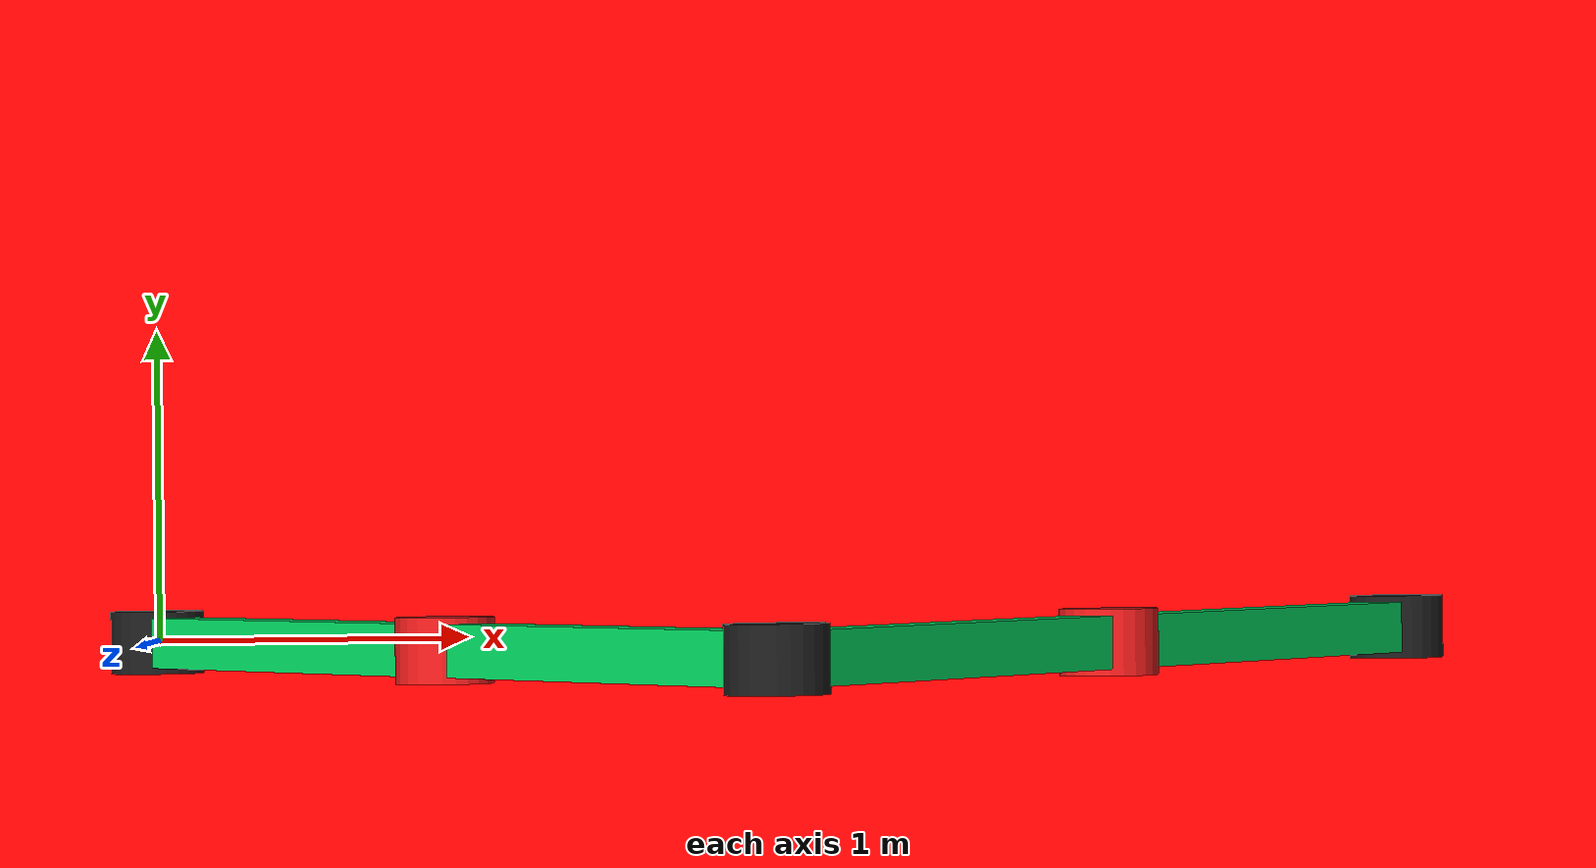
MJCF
<mujoco>
    <compiler angle="degree" />
    <option timestep="0.01" />

    <actuator>
        <motor joint="left_joint" ctrlrange="-10000 10000" ctrllimited="true" />
        <motor joint="right_joint" ctrlrange="-10000 10000" ctrllimited="true" />
    </actuator>

    <worldbody>
        <light diffuse=".5 .5 .5" pos="0 0 3" dir="0 0 -1" />
        <geom name="ground" type="plane" pos="0 0 0" size="10 10 0.1" rgba="1 0.0 0.0 1" />
        <body name="cylinder_body" pos="0 0 0.15">
            <joint name="left_joint" pos="0 0 0" axis="0 1 0"></joint>

            <geom name="cylinder" type="cylinder" pos="0 0 0" size="0.15 0.1" rgba="0.1 0.1 0.1 1" euler="90 0 0"/>
            <geom type="box" size="0.08 0.08 1.0" pos="0.5 0 0.866" rgba="0 0.9 0.4 1" euler="0 30 0"/>
            <body pos="0.5 0 0.866">
                <joint name="left_joint1" pos="0.5 0 0.866" axis="0 1 0" />
                <geom type="cylinder" size="0.15 0.1" pos="0.5 0 0.866" rgba="0.9 0.1 0.1 1" euler="90 0 0"/>
                <body name="body">
                    <geom type="box" pos="1 0 1.7" size="0.08 0.08 1.0" rgba="0 0.9 0.4 1" euler="0 30 0"/>
                </body>
            </body>
        </body>
        <body name="cylinder_body2" pos="4 0 0.15">
            <geom type="cylinder" pos="0 0 0" size="0.15 0.1" rgba="0.1 0.1 0.1 1" euler="90 0 0"/>
            <joint name="right_joint" pos="0 0 0" axis="0 1 0" />
            <geom type="box" size="0.08 0.08 1.0" pos="-0.5 0 0.866" rgba="0 0.9 0.4 1" euler="0 -30 0"/>
            <body name="1" pos="-0.5 0 0.866">
                <joint name="right_joint1" pos="-0.5 0 0.866" axis="0 1 0"></joint>
                <geom type="cylinder" pos="-0.5 0 0.866" size="0.15 0.1" rgba="0.9 0.1 0.1 1" euler="90 0 0"/>
                <body name="2" pos="-0.5 0 0.866">
                    <geom type="box" pos="-0.5 0 0.866" size="0.08 0.08 1.0" rgba="0 0.9 0.4 1" euler="0 -30 0"/>
                    <body name="ee" pos="-1 0 1.7">
                        <geom type="cylinder" pos="0 0 0" size="0.15 0.1" rgba="0.1 0.1 0.1 1" euler="90 0 0"/>
                    </body>
                </body>
            </body>
        </body>
    </worldbody>
    <equality>
        <connect body1="ee" body2="body" anchor="2 0 1.7"/>
        <connect body1="1" body2="2" anchor="-0.5 0 0.866"/>
        <connect body1="cylinder_body" body2="body" anchor="1 0 1.7"/>
    </equality>
</mujoco>
